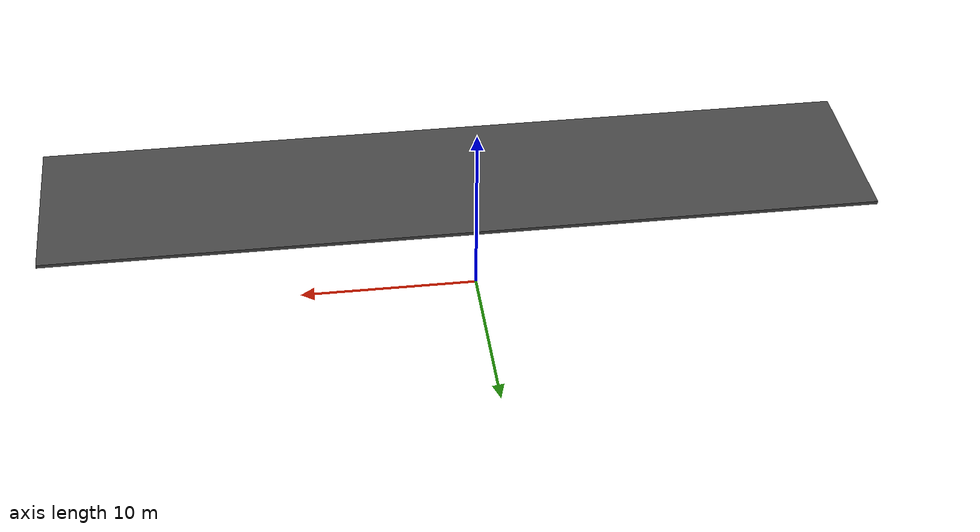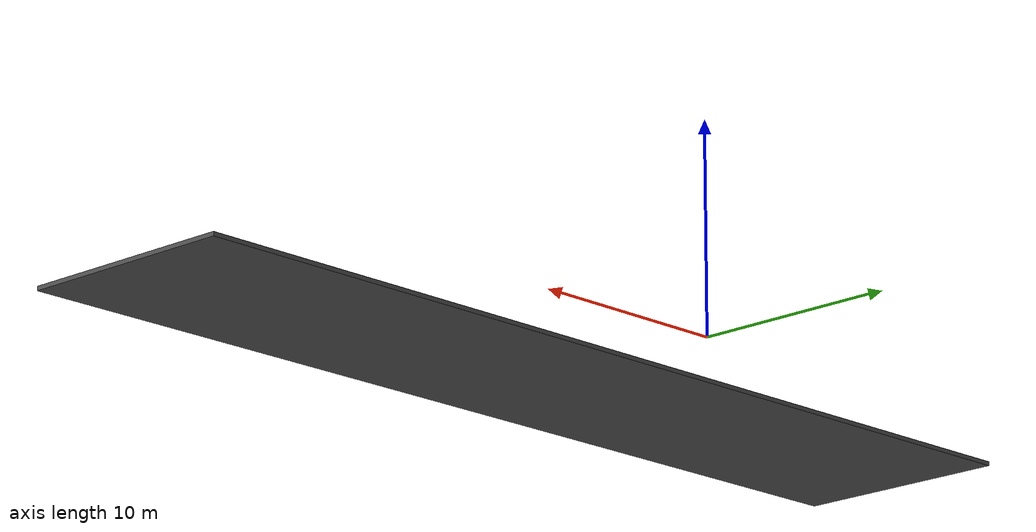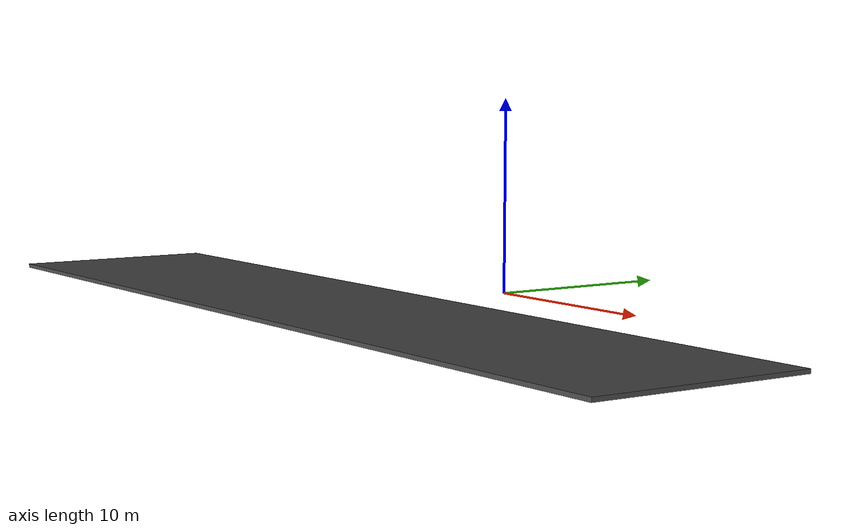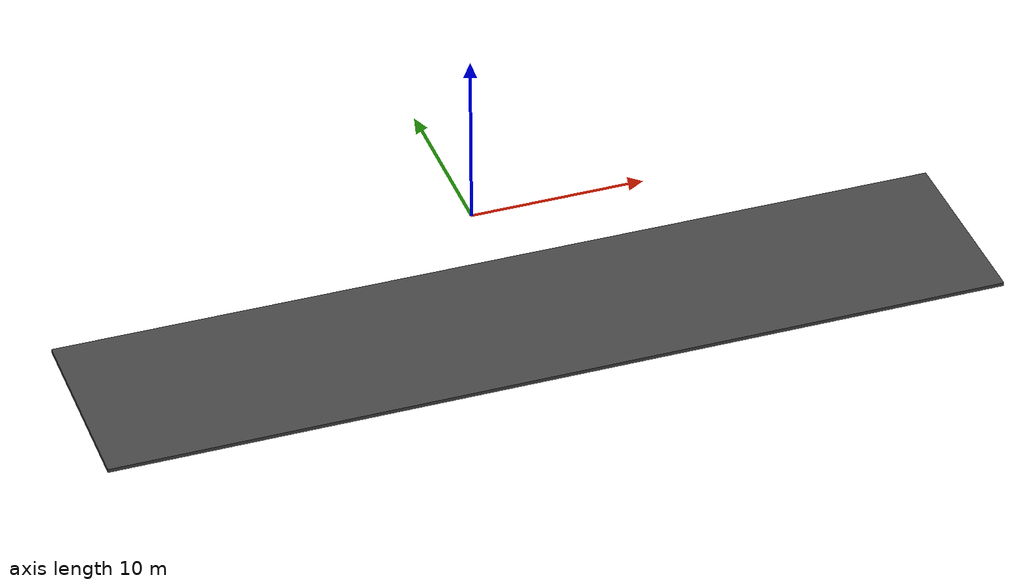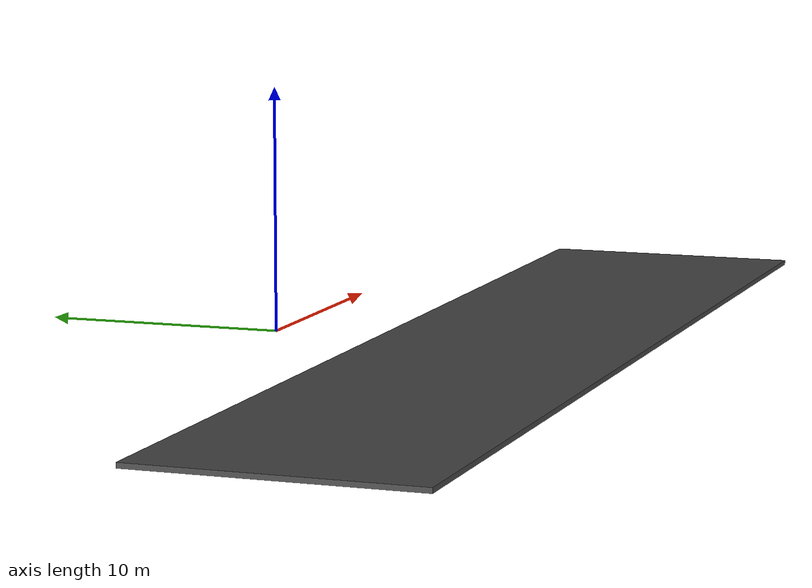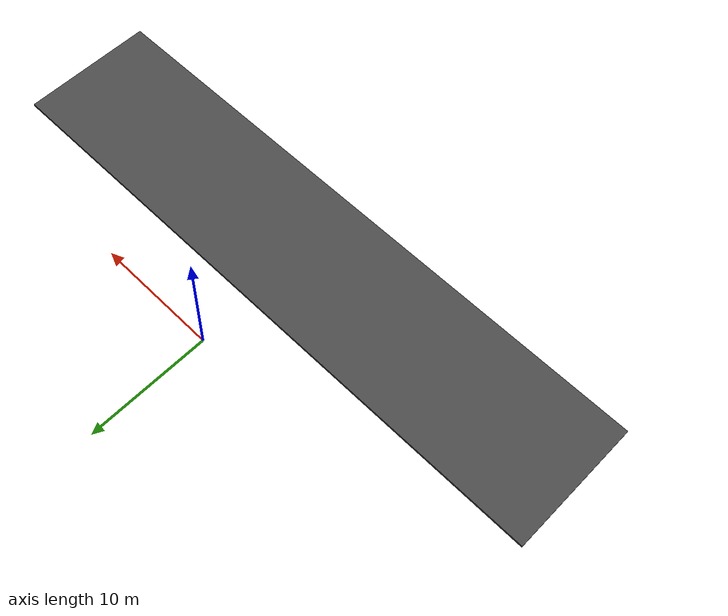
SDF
<?xml version="1.0" ?>
<sdf version="1.4">
  <model name="(DS) Straight Road - 50m">
    <static>true</static>
    <link name="link">
      <inertial>
        <pose>0 0 0 0 0 0</pose>
        <mass>1</mass>
        <inertia>
          <ixx>1</ixx>
          <iyy>1</iyy>
          <izz>1</izz>
          <ixy>0</ixy>
          <ixz>0</ixz>
        </inertia>
      </inertial>
      <collision name="collision">
        <geometry>
          <mesh>
            <uri>model://ds_straight_road_50m/meshes/straight_road_50m.dae</uri>
          </mesh>
        </geometry>
      </collision>

      <visual name="visual">
        <geometry>
          <mesh>
            <uri>model://ds_straight_road_50m/meshes/straight_road_50m.dae</uri>
          </mesh>
        </geometry>
        <material>
          <script>
            <uri>file://media/materials/scripts/ds_sim.material</uri>
            <name>DSSim/Road</name>
          </script>
        </material>
      </visual>
    </link>
  </model>
</sdf>
